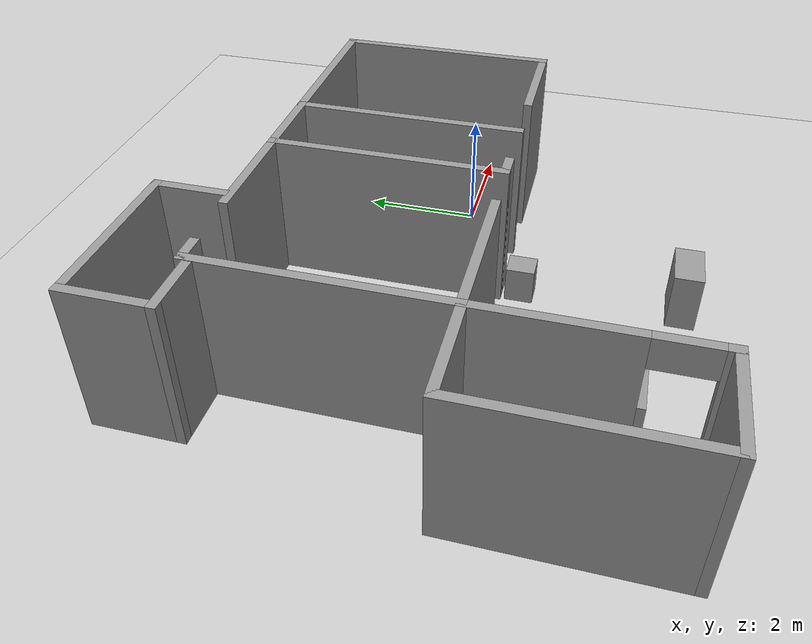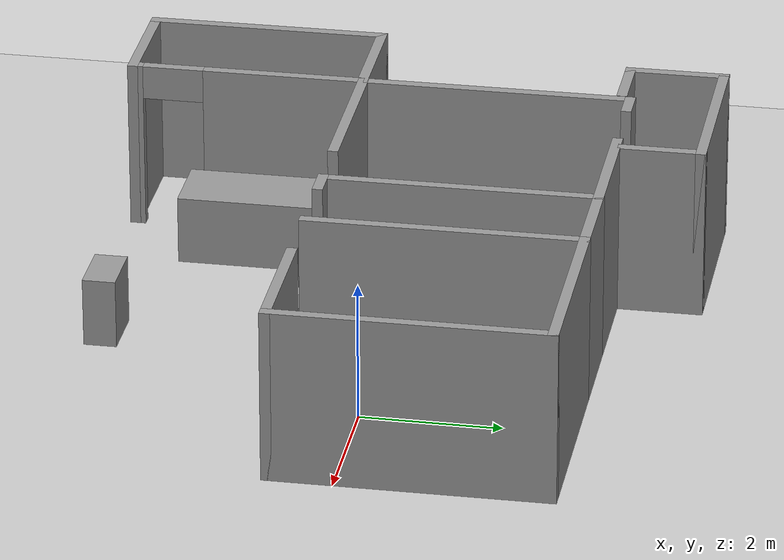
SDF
<sdf version="1.6">
 <world name="default">
  <model name="ground_plane">
   <static>1</static>
   <link name="link">
    <collision name="collision">
     <geometry><plane><normal>0 0 1</normal><size>100 100</size></plane></geometry>
     <surface><friction><ode><mu>100</mu><mu2>50</mu2></ode></friction></surface>
    </collision>
    <visual name="visual">
     <cast_shadows>0</cast_shadows>
     <geometry><plane><normal>0 0 1</normal><size>100 100</size></plane></geometry>
     <material>
      <script><uri>file://media/materials/scripts/gazebo.material</uri><name>Gazebo/Grey</name></script>
     </material>
    </visual>
   </link>
  </model>
  <model name="cma_escritorio">
   <pose>-1.79682 1.02121 0 0 -0 0</pose>
   <link name="Wall_11">
    <collision name="Wall_11_Collision">
     <geometry><box><size>2 0.15 2.5</size></box></geometry>
     <pose>0 0 1.25 0 -0 0</pose>
    </collision>
    <visual name="Wall_11_Visual">
     <pose>0 0 1.25 0 -0 0</pose>
     <geometry><box><size>2 0.15 2.5</size></box></geometry>
     <material>
      <script><uri>file://media/materials/scripts/gazebo.material</uri><name>Gazebo/Grey</name></script>
      <ambient>1 1 1 1</ambient>
     </material>
    </visual>
    <pose>-1.4 1.93 0 0 -0 3.14159</pose>
   </link>
   <link name="Wall_2">
    <collision name="Wall_2_Collision">
     <geometry><box><size>4 0.15 2.5</size></box></geometry>
     <pose>0 0 1.25 0 -0 0</pose>
    </collision>
    <visual name="Wall_2_Visual">
     <pose>0 0 1.25 0 -0 0</pose>
     <geometry><box><size>4 0.15 2.5</size></box></geometry>
     <material>
      <script><uri>file://media/materials/scripts/gazebo.material</uri><name>Gazebo/Grey</name></script>
      <ambient>1 1 1 1</ambient>
     </material>
    </visual>
    <pose>0.875 0.005 0 0 -0 1.5708</pose>
   </link>
   <link name="Wall_25">
    <collision name="Wall_25_Collision">
     <geometry><box><size>2.5 0.15 2.5</size></box></geometry>
     <pose>0 0 1.25 0 -0 0</pose>
    </collision>
    <visual name="Wall_25_Visual">
     <pose>0 0 1.25 0 -0 0</pose>
     <geometry><box><size>2.5 0.15 2.5</size></box></geometry>
     <material>
      <script><uri>file://media/materials/scripts/gazebo.material</uri><name>Gazebo/Grey</name></script>
      <ambient>1 1 1 1</ambient>
     </material>
    </visual>
    <pose>-2.55 -1.93 0 0 -0 3.14159</pose>
   </link>
   <link name="Wall_26">
    <collision name="Wall_26_Collision">
     <geometry><box><size>4 0.15 2.5</size></box></geometry>
     <pose>0 0 1.25 0 -0 0</pose>
    </collision>
    <visual name="Wall_26_Visual">
     <pose>0 0 1.25 0 -0 0</pose>
     <geometry><box><size>4 0.15 2.5</size></box></geometry>
     <material>
      <script><uri>file://media/materials/scripts/gazebo.material</uri><name>Gazebo/Grey</name></script>
      <ambient>1 1 1 1</ambient>
     </material>
    </visual>
    <pose>-3.725 -0.005 0 0 -0 1.5708</pose>
   </link>
   <link name="Wall_27">
    <collision name="Wall_27_Collision">
     <geometry><box><size>0.5 0.15 2.5</size></box></geometry>
     <pose>0 0 1.25 0 -0 0</pose>
    </collision>
    <visual name="Wall_27_Visual">
     <pose>0 0 1.25 0 -0 0</pose>
     <geometry><box><size>0.5 0.15 2.5</size></box></geometry>
     <material>
      <script><uri>file://media/materials/scripts/gazebo.material</uri><name>Gazebo/Grey</name></script>
      <ambient>1 1 1 1</ambient>
     </material>
    </visual>
    <pose>-3.55 1.92 0 0 -0 0</pose>
   </link>
   <link name="Wall_3">
    <collision name="Wall_3_Collision">
     <geometry><box><size>3 0.15 2.5</size></box></geometry>
     <pose>0 0 1.25 0 -0 0</pose>
    </collision>
    <visual name="Wall_3_Visual">
     <pose>0 0 1.25 0 -0 0</pose>
     <geometry><box><size>3 0.15 2.5</size></box></geometry>
     <material>
      <script><uri>file://media/materials/scripts/gazebo.material</uri><name>Gazebo/Grey</name></script>
      <ambient>1 1 1 1</ambient>
     </material>
    </visual>
    <pose>2.3 1.93 0 0 -0 0</pose>
   </link>
   <link name="Wall_4">
    <collision name="Wall_4_Collision">
     <geometry><box><size>4 0.15 2.5</size></box></geometry>
     <pose>0 0 1.25 0 -0 0</pose>
    </collision>
    <visual name="Wall_4_Visual">
     <pose>0 0 1.25 0 -0 0</pose>
     <geometry><box><size>4 0.15 2.5</size></box></geometry>
     <material>
      <script><uri>file://media/materials/scripts/gazebo.material</uri><name>Gazebo/Grey</name></script>
      <ambient>1 1 1 1</ambient>
     </material>
    </visual>
    <pose>3.725 0.005 0 0 0 -1.5708</pose>
   </link>
   <link name="Wall_5">
    <collision name="Wall_5_Collision">
     <geometry><box><size>2 0.15 2.5</size></box></geometry>
     <pose>0 0 1.25 0 -0 0</pose>
    </collision>
    <visual name="Wall_5_Visual">
     <pose>0 0 1.25 0 -0 0</pose>
     <geometry><box><size>2 0.15 2.5</size></box></geometry>
     <material>
      <script><uri>file://media/materials/scripts/gazebo.material</uri><name>Gazebo/Grey</name></script>
      <ambient>1 1 1 1</ambient>
     </material>
    </visual>
    <pose>2.8 -1.92 0 0 -0 3.14159</pose>
   </link>
   <link name="Wall_7">
    <collision name="Wall_7_Collision">
     <geometry><box><size>1.5 0.15 2.5</size></box></geometry>
     <pose>0 0 1.25 0 -0 0</pose>
    </collision>
    <visual name="Wall_7_Visual">
     <pose>0 0 1.25 0 -0 0</pose>
     <geometry><box><size>1.5 0.15 2.5</size></box></geometry>
     <material>
      <script><uri>file://media/materials/scripts/gazebo.material</uri><name>Gazebo/Grey</name></script>
      <ambient>1 1 1 1</ambient>
     </material>
    </visual>
    <pose>0.2 1.93 0 0 -0 3.14159</pose>
   </link>
   <link name="Wall_8">
    <collision name="Wall_8_Collision">
     <geometry><box><size>4 0.15 2.5</size></box></geometry>
     <pose>0 0 1.25 0 -0 0</pose>
    </collision>
    <visual name="Wall_8_Visual">
     <pose>0 0 1.25 0 -0 0</pose>
     <geometry><box><size>4 0.15 2.5</size></box></geometry>
     <material>
      <script><uri>file://media/materials/scripts/gazebo.material</uri><name>Gazebo/Grey</name></script>
      <ambient>1 1 1 1</ambient>
     </material>
    </visual>
    <pose>-0.475 0.005 0 0 0 -1.5708</pose>
   </link>
   <link name="Wall_9">
    <collision name="Wall_9_Collision">
     <geometry><box><size>0.5 0.15 2.5</size></box></geometry>
     <pose>0 0 1.25 0 -0 0</pose>
    </collision>
    <visual name="Wall_9_Visual">
     <pose>0 0 1.25 0 -0 0</pose>
     <geometry><box><size>0.5 0.15 2.5</size></box></geometry>
     <material>
      <script><uri>file://media/materials/scripts/gazebo.material</uri><name>Gazebo/Grey</name></script>
      <ambient>1 1 1 1</ambient>
     </material>
    </visual>
    <pose>-0.3 -1.92 0 0 -0 0</pose>
   </link>
   <static>1</static>
  </model>
  <model name="cma_banheiro">
   <pose>-5.22928 3.4871 0 0 -0 0</pose>
   <link name="Wall_0">
    <collision name="Wall_0_Collision">
     <geometry><box><size>1 0.15 2.5</size></box></geometry>
     <pose>0 0 1.25 0 -0 0</pose>
    </collision>
    <visual name="Wall_0_Visual">
     <pose>0 0 1.25 0 -0 0</pose>
     <geometry><box><size>1 0.15 2.5</size></box></geometry>
     <material>
      <script><uri>file://media/materials/scripts/gazebo.material</uri><name>Gazebo/Grey</name></script>
      <ambient>1 1 1 1</ambient>
     </material>
    </visual>
    <pose>-0.875 -0.675 0 0 -0 3.14159</pose>
   </link>
   <link name="Wall_1">
    <collision name="Wall_1_Collision">
     <geometry><box><size>1.5 0.15 2.5</size></box></geometry>
     <pose>0 0 1.25 0 -0 0</pose>
    </collision>
    <visual name="Wall_1_Visual">
     <pose>0 0 1.25 0 -0 0</pose>
     <geometry><box><size>1.5 0.15 2.5</size></box></geometry>
     <material>
      <script><uri>file://media/materials/scripts/gazebo.material</uri><name>Gazebo/Grey</name></script>
      <ambient>1 1 1 1</ambient>
     </material>
    </visual>
    <pose>-1.3 0 0 0 -0 1.5708</pose>
   </link>
   <link name="Wall_2">
    <collision name="Wall_2_Collision">
     <geometry><box><size>2.75 0.15 2.5</size></box></geometry>
     <pose>0 0 1.25 0 -0 0</pose>
    </collision>
    <visual name="Wall_2_Visual">
     <pose>0 0 1.25 0 -0 0</pose>
     <geometry><box><size>2.75 0.15 2.5</size></box></geometry>
     <material>
      <script><uri>file://media/materials/scripts/gazebo.material</uri><name>Gazebo/Grey</name></script>
      <ambient>1 1 1 1</ambient>
     </material>
    </visual>
    <pose>0 0.675 0 0 -0 0</pose>
   </link>
   <link name="Wall_4">
    <collision name="Wall_4_Collision">
     <geometry><box><size>1.25 0.15 2.5</size></box></geometry>
     <pose>0 0 1.25 0 -0 0</pose>
    </collision>
    <visual name="Wall_4_Visual">
     <pose>0 0 1.25 0 -0 0</pose>
     <geometry><box><size>1.25 0.15 2.5</size></box></geometry>
     <material>
      <script><uri>file://media/materials/scripts/gazebo.material</uri><name>Gazebo/Grey</name></script>
      <ambient>1 1 1 1</ambient>
     </material>
    </visual>
    <pose>1.3 0.125 0 0 0 -1.5708</pose>
   </link>
   <static>1</static>
  </model>
  <model name="cma_varanda1">
   <pose>-6.32518 -2.59313 0 0 -0 0</pose>
   <link name="Wall_0">
    <pose>0.8 0 0 0 0 -1.5708</pose>
    <visual name="Wall_0_Visual_0">
     <pose>-0.5525 0 1.25 0 -0 0</pose>
     <geometry><box><size>2.395 0.15 2.5</size></box></geometry>
     <material>
      <script><uri>file://media/materials/scripts/gazebo.material</uri><name>Gazebo/Grey</name></script>
      <ambient>1 1 1 1</ambient>
     </material>
    </visual>
    <collision name="Wall_0_Collision_0">
     <geometry><box><size>2.395 0.15 2.5</size></box></geometry>
     <pose>-0.5525 0 1.25 0 -0 0</pose>
    </collision>
    <visual name="Wall_0_Visual_1">
     <pose>1.6375 0 1.25 0 -0 0</pose>
     <geometry><box><size>0.225 0.15 2.5</size></box></geometry>
     <material>
      <script><uri>file://media/materials/scripts/gazebo.material</uri><name>Gazebo/Grey</name></script>
      <ambient>1 1 1 1</ambient>
     </material>
    </visual>
    <collision name="Wall_0_Collision_1">
     <geometry><box><size>0.225 0.15 2.5</size></box></geometry>
     <pose>1.6375 0 1.25 0 -0 0</pose>
    </collision>
    <visual name="Wall_0_Visual_2">
     <pose>1.085 0 2.25 0 -0 0</pose>
     <geometry><box><size>0.88 0.15 0.5</size></box></geometry>
     <material>
      <script><uri>file://media/materials/scripts/gazebo.material</uri><name>Gazebo/Grey</name></script>
      <ambient>1 1 1 1</ambient>
     </material>
    </visual>
    <collision name="Wall_0_Collision_2">
     <geometry><box><size>0.88 0.15 0.5</size></box></geometry>
     <pose>1.085 0 2.25 0 -0 0</pose>
    </collision>
   </link>
   <link name="Wall_1">
    <collision name="Wall_1_Collision">
     <geometry><box><size>1.75 0.15 2.5</size></box></geometry>
     <pose>0 0 1.25 0 -0 0</pose>
    </collision>
    <visual name="Wall_1_Visual">
     <pose>0 0 1.25 0 -0 0</pose>
     <geometry><box><size>1.75 0.15 2.5</size></box></geometry>
     <material>
      <script><uri>file://media/materials/scripts/gazebo.material</uri><name>Gazebo/Grey</name></script>
      <ambient>1 1 1 1</ambient>
     </material>
    </visual>
    <pose>0 -1.675 0 0 -0 3.14159</pose>
   </link>
   <link name="Wall_2">
    <collision name="Wall_2_Collision">
     <geometry><box><size>3.5 0.15 2.5</size></box></geometry>
     <pose>0 0 1.25 0 -0 0</pose>
    </collision>
    <visual name="Wall_2_Visual">
     <pose>0 0 1.25 0 -0 0</pose>
     <geometry><box><size>3.5 0.15 2.5</size></box></geometry>
     <material>
      <script><uri>file://media/materials/scripts/gazebo.material</uri><name>Gazebo/Grey</name></script>
      <ambient>1 1 1 1</ambient>
     </material>
    </visual>
    <pose>-0.8 0 0 0 -0 1.5708</pose>
   </link>
   <link name="Wall_3">
    <collision name="Wall_3_Collision">
     <geometry><box><size>1.75 0.15 2.5</size></box></geometry>
     <pose>0 0 1.25 0 -0 0</pose>
    </collision>
    <visual name="Wall_3_Visual">
     <pose>0 0 1.25 0 -0 0</pose>
     <geometry><box><size>1.75 0.15 2.5</size></box></geometry>
     <material>
      <script><uri>file://media/materials/scripts/gazebo.material</uri><name>Gazebo/Grey</name></script>
      <ambient>1 1 1 1</ambient>
     </material>
    </visual>
    <pose>0 1.675 0 0 -0 0</pose>
   </link>
   <static>1</static>
  </model>
  <model name="cma_armario">
   <link name="link_0">
    <pose>1.32157 0.885178 0.5 0 -0 0</pose>
    <inertial>
     <mass>0.402376</mass>
     <inertia>
      <ixx>0.0353686</ixx>
      <ixy>0</ixy>
      <ixz>0</ixz>
      <iyy>0.132616</iyy>
      <iyz>0</iyz>
      <izz>0.100922</izz>
     </inertia>
    </inertial>
    <visual name="visual">
     <geometry><box><size>1.71877 0.234069 1</size></box></geometry>
     <material>
      <lighting>1</lighting>
      <script><uri>file://media/materials/scripts/gazebo.material</uri><name>Gazebo/Grey</name></script>
      <ambient>0.3 0.3 0.3 1</ambient>
      <diffuse>0.7 0.7 0.7 1</diffuse>
      <specular>0.01 0.01 0.01 1</specular>
      <emissive>0 0 0 1</emissive>
     </material>
    </visual>
    <collision name="collision">
     <geometry><box><size>1.71877 0.234069 1</size></box></geometry>
     <surface>
      <friction>
       <ode><mu>1</mu><mu2>1</mu2><fdir1>0 0 0</fdir1><slip1>0</slip1><slip2>0</slip2></ode>
       <torsional>
        <coefficient>1</coefficient>
        <patch_radius>0</patch_radius>
        <surface_radius>0</surface_radius>
        <use_patch_radius>1</use_patch_radius>
        <ode><slip>0</slip></ode>
       </torsional>
      </friction>
      <bounce><restitution_coefficient>0</restitution_coefficient><threshold>1e+06</threshold></bounce>
      <contact>
       <collide_without_contact>0</collide_without_contact>
       <collide_without_contact_bitmask>1</collide_without_contact_bitmask>
       <collide_bitmask>1</collide_bitmask>
       <ode>
        <soft_cfm>0</soft_cfm>
        <soft_erp>0.2</soft_erp>
        <kp>1e+13</kp>
        <kd>1</kd>
        <max_vel>0.01</max_vel>
        <min_depth>0</min_depth>
       </ode>
       <bullet>
        <split_impulse>1</split_impulse>
        <split_impulse_penetration_threshold>-0.01</split_impulse_penetration_threshold>
        <soft_cfm>0</soft_cfm>
        <soft_erp>0.2</soft_erp>
        <kp>1e+13</kp>
        <kd>1</kd>
       </bullet>
      </contact>
     </surface>
    </collision>
   </link>
   <static>0</static>
   <pose>-0.614128 -1.59222 -1e-06 2e-06 -0 0.000793</pose>
  </model>
  <model name="cma_lixo">
   <link name="link_1">
    <pose>0.882962 1.81586 0.5 0 -0 0</pose>
    <inertial>
     <mass>0.0687644</mass>
     <inertia>
      <ixx>0.00602588</ixx>
      <ixy>0</ixy>
      <ixz>0</ixz>
      <iyy>0.00602588</iyy>
      <iyz>0</iyz>
      <izz>0.000591068</izz>
     </inertia>
    </inertial>
    <visual name="visual">
     <geometry><cylinder><radius>0.131112</radius><length>1</length></cylinder></geometry>
     <material>
      <lighting>1</lighting>
      <script><uri>file://media/materials/scripts/gazebo.material</uri><name>Gazebo/Grey</name></script>
      <ambient>0.3 0.3 0.3 1</ambient>
      <diffuse>0.7 0.7 0.7 1</diffuse>
      <specular>0.01 0.01 0.01 1</specular>
      <emissive>0 0 0 1</emissive>
     </material>
    </visual>
    <collision name="collision">
     <geometry><cylinder><radius>0.131112</radius><length>1</length></cylinder></geometry>
     <surface>
      <friction>
       <ode><mu>1</mu><mu2>1</mu2><fdir1>0 0 0</fdir1><slip1>0</slip1><slip2>0</slip2></ode>
       <torsional>
        <coefficient>1</coefficient>
        <patch_radius>0</patch_radius>
        <surface_radius>0</surface_radius>
        <use_patch_radius>1</use_patch_radius>
        <ode><slip>0</slip></ode>
       </torsional>
      </friction>
      <bounce><restitution_coefficient>0</restitution_coefficient><threshold>1e+06</threshold></bounce>
      <contact>
       <collide_without_contact>0</collide_without_contact>
       <collide_without_contact_bitmask>1</collide_without_contact_bitmask>
       <collide_bitmask>1</collide_bitmask>
       <ode>
        <soft_cfm>0</soft_cfm>
        <soft_erp>0.2</soft_erp>
        <kp>1e+13</kp>
        <kd>1</kd>
        <max_vel>0.01</max_vel>
        <min_depth>0</min_depth>
       </ode>
       <bullet>
        <split_impulse>1</split_impulse>
        <split_impulse_penetration_threshold>-0.01</split_impulse_penetration_threshold>
        <soft_cfm>0</soft_cfm>
        <soft_erp>0.2</soft_erp>
        <kp>1e+13</kp>
        <kd>1</kd>
       </bullet>
      </contact>
     </surface>
    </collision>
   </link>
   <static>0</static>
   <pose>-0.62784 -2.26699 -9e-06 0 -0 0.010422</pose>
  </model>
  <model name="cma_gaveteiro_pequeno">
   <link name="link_0">
    <pose>0.256174 1.25055 0.5 0 -0 0</pose>
    <inertial>
     <mass>0.187186</mass>
     <inertia>
      <ixx>0.01851</ixx>
      <ixy>0</ixy>
      <ixz>0</ixz>
      <iyy>0.0185276</iyy>
      <iyz>0</iyz>
      <izz>0.00583981</izz>
     </inertia>
    </inertial>
    <visual name="visual">
     <geometry><box><size>0.433317 0.432002 1</size></box></geometry>
     <material>
      <lighting>1</lighting>
      <script><uri>file://media/materials/scripts/gazebo.material</uri><name>Gazebo/Grey</name></script>
      <ambient>0.3 0.3 0.3 1</ambient>
      <diffuse>0.7 0.7 0.7 1</diffuse>
      <specular>0.01 0.01 0.01 1</specular>
      <emissive>0 0 0 1</emissive>
     </material>
    </visual>
    <collision name="collision">
     <geometry><box><size>0.433317 0.432002 1</size></box></geometry>
     <surface>
      <friction>
       <ode><mu>1</mu><mu2>1</mu2><fdir1>0 0 0</fdir1><slip1>0</slip1><slip2>0</slip2></ode>
       <torsional>
        <coefficient>1</coefficient>
        <patch_radius>0</patch_radius>
        <surface_radius>0</surface_radius>
        <use_patch_radius>1</use_patch_radius>
        <ode><slip>0</slip></ode>
       </torsional>
      </friction>
      <bounce><restitution_coefficient>0</restitution_coefficient><threshold>1e+06</threshold></bounce>
      <contact>
       <collide_without_contact>0</collide_without_contact>
       <collide_without_contact_bitmask>1</collide_without_contact_bitmask>
       <collide_bitmask>1</collide_bitmask>
       <ode>
        <soft_cfm>0</soft_cfm>
        <soft_erp>0.2</soft_erp>
        <kp>1e+13</kp>
        <kd>1</kd>
        <max_vel>0.01</max_vel>
        <min_depth>0</min_depth>
       </ode>
       <bullet>
        <split_impulse>1</split_impulse>
        <split_impulse_penetration_threshold>-0.01</split_impulse_penetration_threshold>
        <soft_cfm>0</soft_cfm>
        <soft_erp>0.2</soft_erp>
        <kp>1e+13</kp>
        <kd>1</kd>
       </bullet>
      </contact>
     </surface>
    </collision>
   </link>
   <static>0</static>
   <pose>-0.853061 1.39432 -7e-06 4e-06 -2e-06 9e-06</pose>
  </model>
  <model name="cma_gaveteiro_pequeno_0">
   <link name="link_0">
    <pose>0.256174 1.25055 0.5 0 -0 0</pose>
    <inertial>
     <mass>0.187186</mass>
     <inertia>
      <ixx>0.01851</ixx>
      <ixy>0</ixy>
      <ixz>0</ixz>
      <iyy>0.0185276</iyy>
      <iyz>0</iyz>
      <izz>0.00583981</izz>
     </inertia>
    </inertial>
    <visual name="visual">
     <geometry><box><size>0.433317 0.432002 1</size></box></geometry>
     <material>
      <lighting>1</lighting>
      <script><uri>file://media/materials/scripts/gazebo.material</uri><name>Gazebo/Grey</name></script>
      <ambient>0.3 0.3 0.3 1</ambient>
      <diffuse>0.7 0.7 0.7 1</diffuse>
      <specular>0.01 0.01 0.01 1</specular>
      <emissive>0 0 0 1</emissive>
     </material>
    </visual>
    <collision name="collision">
     <geometry><box><size>0.433317 0.432002 1</size></box></geometry>
     <surface>
      <friction>
       <ode><mu>1</mu><mu2>1</mu2><fdir1>0 0 0</fdir1><slip1>0</slip1><slip2>0</slip2></ode>
       <torsional>
        <coefficient>1</coefficient>
        <patch_radius>0</patch_radius>
        <surface_radius>0</surface_radius>
        <use_patch_radius>1</use_patch_radius>
        <ode><slip>0</slip></ode>
       </torsional>
      </friction>
      <bounce><restitution_coefficient>0</restitution_coefficient><threshold>1e+06</threshold></bounce>
      <contact>
       <collide_without_contact>0</collide_without_contact>
       <collide_without_contact_bitmask>1</collide_without_contact_bitmask>
       <collide_bitmask>1</collide_bitmask>
       <ode>
        <soft_cfm>0</soft_cfm>
        <soft_erp>0.2</soft_erp>
        <kp>1e+13</kp>
        <kd>1</kd>
        <max_vel>0.01</max_vel>
        <min_depth>0</min_depth>
       </ode>
       <bullet>
        <split_impulse>1</split_impulse>
        <split_impulse_penetration_threshold>-0.01</split_impulse_penetration_threshold>
        <soft_cfm>0</soft_cfm>
        <soft_erp>0.2</soft_erp>
        <kp>1e+13</kp>
        <kd>1</kd>
       </bullet>
      </contact>
     </surface>
    </collision>
   </link>
   <static>0</static>
   <pose>-0.341296 1.3951 5e-06 -5e-06 5e-06 -4.7e-05</pose>
  </model>
  <model name="cma_gaveteiro">
   <link name="link_0">
    <pose>-0 4e-06 0 0 -0 0</pose>
    <inertial>
     <mass>0.245086</mass>
     <inertia>
      <ixx>0.025418</ixx>
      <ixy>0</ixy>
      <ixz>0</ixz>
      <iyy>0.0254411</iyy>
      <iyz>0</iyz>
      <izz>0.0100113</izz>
     </inertia>
    </inertial>
    <visual name="visual">
     <geometry><box><size>0.495657 0.494491 1</size></box></geometry>
     <material>
      <lighting>1</lighting>
      <script><uri>file://media/materials/scripts/gazebo.material</uri><name>Gazebo/Grey</name></script>
      <ambient>0.3 0.3 0.3 1</ambient>
      <diffuse>0.7 0.7 0.7 1</diffuse>
      <specular>0.01 0.01 0.01 1</specular>
      <emissive>0 0 0 1</emissive>
     </material>
    </visual>
    <collision name="collision">
     <geometry><box><size>0.495657 0.494491 1</size></box></geometry>
     <surface>
      <friction>
       <ode><mu>1</mu><mu2>1</mu2><fdir1>0 0 0</fdir1><slip1>0</slip1><slip2>0</slip2></ode>
       <torsional>
        <coefficient>1</coefficient>
        <patch_radius>0</patch_radius>
        <surface_radius>0</surface_radius>
        <use_patch_radius>1</use_patch_radius>
        <ode><slip>0</slip></ode>
       </torsional>
      </friction>
      <bounce><restitution_coefficient>0</restitution_coefficient><threshold>1e+06</threshold></bounce>
      <contact>
       <collide_without_contact>0</collide_without_contact>
       <collide_without_contact_bitmask>1</collide_without_contact_bitmask>
       <collide_bitmask>1</collide_bitmask>
       <ode>
        <soft_cfm>0</soft_cfm>
        <soft_erp>0.2</soft_erp>
        <kp>1e+13</kp>
        <kd>1</kd>
        <max_vel>0.01</max_vel>
        <min_depth>0</min_depth>
       </ode>
       <bullet>
        <split_impulse>1</split_impulse>
        <split_impulse_penetration_threshold>-0.01</split_impulse_penetration_threshold>
        <soft_cfm>0</soft_cfm>
        <soft_erp>0.2</soft_erp>
        <kp>1e+13</kp>
        <kd>1</kd>
       </bullet>
      </contact>
     </surface>
    </collision>
   </link>
   <static>0</static>
   <pose>-0.569077 2.1223 0.5 -1e-06 -2e-06 0.000284</pose>
  </model>
  <model name="cma_gaveteiro_0">
   <link name="link_0">
    <pose>-0 4e-06 0 0 -0 0</pose>
    <inertial>
     <mass>0.245086</mass>
     <inertia>
      <ixx>0.025418</ixx>
      <ixy>0</ixy>
      <ixz>0</ixz>
      <iyy>0.0254411</iyy>
      <iyz>0</iyz>
      <izz>0.0100113</izz>
     </inertia>
    </inertial>
    <visual name="visual">
     <geometry><box><size>0.495657 0.494491 1</size></box></geometry>
     <material>
      <lighting>1</lighting>
      <script><uri>file://media/materials/scripts/gazebo.material</uri><name>Gazebo/Grey</name></script>
      <ambient>0.3 0.3 0.3 1</ambient>
      <diffuse>0.7 0.7 0.7 1</diffuse>
      <specular>0.01 0.01 0.01 1</specular>
      <emissive>0 0 0 1</emissive>
     </material>
    </visual>
    <collision name="collision">
     <geometry><box><size>0.495657 0.494491 1</size></box></geometry>
     <surface>
      <friction>
       <ode><mu>1</mu><mu2>1</mu2><fdir1>0 0 0</fdir1><slip1>0</slip1><slip2>0</slip2></ode>
       <torsional>
        <coefficient>1</coefficient>
        <patch_radius>0</patch_radius>
        <surface_radius>0</surface_radius>
        <use_patch_radius>1</use_patch_radius>
        <ode><slip>0</slip></ode>
       </torsional>
      </friction>
      <bounce><restitution_coefficient>0</restitution_coefficient><threshold>1e+06</threshold></bounce>
      <contact>
       <collide_without_contact>0</collide_without_contact>
       <collide_without_contact_bitmask>1</collide_without_contact_bitmask>
       <collide_bitmask>1</collide_bitmask>
       <ode>
        <soft_cfm>0</soft_cfm>
        <soft_erp>0.2</soft_erp>
        <kp>1e+13</kp>
        <kd>1</kd>
        <max_vel>0.01</max_vel>
        <min_depth>0</min_depth>
       </ode>
       <bullet>
        <split_impulse>1</split_impulse>
        <split_impulse_penetration_threshold>-0.01</split_impulse_penetration_threshold>
        <soft_cfm>0</soft_cfm>
        <soft_erp>0.2</soft_erp>
        <kp>1e+13</kp>
        <kd>1</kd>
       </bullet>
      </contact>
     </surface>
    </collision>
   </link>
   <static>0</static>
   <pose>-0.560139 0.623595 0.500001 1e-06 1e-06 -0.007811</pose>
  </model>
  <model name="cma_lixo_0">
   <link name="link_1">
    <pose>0.882962 1.81586 0.5 0 -0 0</pose>
    <inertial>
     <mass>0.0687644</mass>
     <inertia>
      <ixx>0.00602588</ixx>
      <ixy>0</ixy>
      <ixz>0</ixz>
      <iyy>0.00602588</iyy>
      <iyz>0</iyz>
      <izz>0.000591068</izz>
     </inertia>
    </inertial>
    <visual name="visual">
     <geometry><cylinder><radius>0.131112</radius><length>1</length></cylinder></geometry>
     <material>
      <lighting>1</lighting>
      <script><uri>file://media/materials/scripts/gazebo.material</uri><name>Gazebo/Grey</name></script>
      <ambient>0.3 0.3 0.3 1</ambient>
      <diffuse>0.7 0.7 0.7 1</diffuse>
      <specular>0.01 0.01 0.01 1</specular>
      <emissive>0 0 0 1</emissive>
     </material>
    </visual>
    <collision name="collision">
     <geometry><cylinder><radius>0.131112</radius><length>1</length></cylinder></geometry>
     <surface>
      <friction>
       <ode><mu>1</mu><mu2>1</mu2><fdir1>0 0 0</fdir1><slip1>0</slip1><slip2>0</slip2></ode>
       <torsional>
        <coefficient>1</coefficient>
        <patch_radius>0</patch_radius>
        <surface_radius>0</surface_radius>
        <use_patch_radius>1</use_patch_radius>
        <ode><slip>0</slip></ode>
       </torsional>
      </friction>
      <bounce><restitution_coefficient>0</restitution_coefficient><threshold>1e+06</threshold></bounce>
      <contact>
       <collide_without_contact>0</collide_without_contact>
       <collide_without_contact_bitmask>1</collide_without_contact_bitmask>
       <collide_bitmask>1</collide_bitmask>
       <ode>
        <soft_cfm>0</soft_cfm>
        <soft_erp>0.2</soft_erp>
        <kp>1e+13</kp>
        <kd>1</kd>
        <max_vel>0.01</max_vel>
        <min_depth>0</min_depth>
       </ode>
       <bullet>
        <split_impulse>1</split_impulse>
        <split_impulse_penetration_threshold>-0.01</split_impulse_penetration_threshold>
        <soft_cfm>0</soft_cfm>
        <soft_erp>0.2</soft_erp>
        <kp>1e+13</kp>
        <kd>1</kd>
       </bullet>
      </contact>
     </surface>
    </collision>
   </link>
   <static>0</static>
   <pose>-1.59052 -0.796852 -7e-06 0 -0 0.000705</pose>
  </model>
  <model name="unit_box_0">
   <pose>-0.697515 0.193796 0.5 0 -0 4e-06</pose>
   <link name="link">
    <inertial>
     <mass>1</mass>
     <inertia>
      <ixx>0.166667</ixx>
      <ixy>0</ixy>
      <ixz>0</ixz>
      <iyy>0.166667</iyy>
      <iyz>0</iyz>
      <izz>0.166667</izz>
     </inertia>
    </inertial>
    <collision name="collision"><geometry><box><size>1 1 1</size></box></geometry></collision>
    <visual name="visual">
     <geometry><box><size>1 1 1</size></box></geometry>
     <material>
      <script><name>Gazebo/Grey</name><uri>file://media/materials/scripts/gazebo.material</uri></script>
     </material>
    </visual>
   </link>
  </model>
  <model name="cma_sofa2">
   <link name="link_0">
    <pose>-4.668 -2.00601 0.5 0 -0 0</pose>
    <inertial>
     <mass>1.98683</mass>
     <inertia>
      <ixx>0.819149</ixx>
      <ixy>0</ixy>
      <ixz>0</ixz>
      <iyy>0.331138</iyy>
      <iyz>0</iyz>
      <izz>0.819149</izz>
     </inertia>
    </inertial>
    <visual name="visual">
     <geometry><box><size>1 1.98682 1</size></box></geometry>
     <material>
      <lighting>1</lighting>
      <script><uri>file://media/materials/scripts/gazebo.material</uri><name>Gazebo/Grey</name></script>
      <ambient>0.3 0.3 0.3 1</ambient>
      <diffuse>0.7 0.7 0.7 1</diffuse>
      <specular>0.01 0.01 0.01 1</specular>
      <emissive>0 0 0 1</emissive>
     </material>
    </visual>
    <collision name="collision">
     <geometry><box><size>1 1.98682 1</size></box></geometry>
     <surface>
      <friction>
       <ode><mu>1</mu><mu2>1</mu2><fdir1>0 0 0</fdir1><slip1>0</slip1><slip2>0</slip2></ode>
       <torsional>
        <coefficient>1</coefficient>
        <patch_radius>0</patch_radius>
        <surface_radius>0</surface_radius>
        <use_patch_radius>1</use_patch_radius>
        <ode><slip>0</slip></ode>
       </torsional>
      </friction>
      <bounce><restitution_coefficient>0</restitution_coefficient><threshold>1e+06</threshold></bounce>
      <contact>
       <collide_without_contact>0</collide_without_contact>
       <collide_without_contact_bitmask>1</collide_without_contact_bitmask>
       <collide_bitmask>1</collide_bitmask>
       <ode>
        <soft_cfm>0</soft_cfm>
        <soft_erp>0.2</soft_erp>
        <kp>1e+13</kp>
        <kd>1</kd>
        <max_vel>0.01</max_vel>
        <min_depth>0</min_depth>
       </ode>
       <bullet>
        <split_impulse>1</split_impulse>
        <split_impulse_penetration_threshold>-0.01</split_impulse_penetration_threshold>
        <soft_cfm>0</soft_cfm>
        <soft_erp>0.2</soft_erp>
        <kp>1e+13</kp>
        <kd>1</kd>
       </bullet>
      </contact>
     </surface>
    </collision>
   </link>
   <static>0</static>
   <pose>-0.128912 -0.395468 -5e-06 -3e-06 -1e-06 1e-06</pose>
  </model>
  <model name="cma_bau_s">
   <link name="link_1">
    <pose>0.109594 0.272293 0 0 -0 0</pose>
    <inertial>
     <mass>0.125479</mass>
     <inertia>
      <ixx>0.00641943</ixx>
      <ixy>0</ixy>
      <ixz>0</ixz>
      <iyy>0.0059754</iyy>
      <iyz>0</iyz>
      <izz>0.00422085</izz>
     </inertia>
    </inertial>
    <visual name="visual">
     <geometry><box><size>0.424964 0.472283 0.625118</size></box></geometry>
     <material>
      <lighting>1</lighting>
      <script><uri>file://media/materials/scripts/gazebo.material</uri><name>Gazebo/Grey</name></script>
      <ambient>0.3 0.3 0.3 1</ambient>
      <diffuse>0.7 0.7 0.7 1</diffuse>
      <specular>0.01 0.01 0.01 1</specular>
      <emissive>0 0 0 1</emissive>
     </material>
    </visual>
    <collision name="collision">
     <geometry><box><size>0.424964 0.472283 0.625118</size></box></geometry>
     <surface>
      <friction>
       <ode><mu>1</mu><mu2>1</mu2><fdir1>0 0 0</fdir1><slip1>0</slip1><slip2>0</slip2></ode>
       <torsional>
        <coefficient>1</coefficient>
        <patch_radius>0</patch_radius>
        <surface_radius>0</surface_radius>
        <use_patch_radius>1</use_patch_radius>
        <ode><slip>0</slip></ode>
       </torsional>
      </friction>
      <bounce><restitution_coefficient>0</restitution_coefficient><threshold>1e+06</threshold></bounce>
      <contact>
       <collide_without_contact>0</collide_without_contact>
       <collide_without_contact_bitmask>1</collide_without_contact_bitmask>
       <collide_bitmask>1</collide_bitmask>
       <ode>
        <soft_cfm>0</soft_cfm>
        <soft_erp>0.2</soft_erp>
        <kp>1e+13</kp>
        <kd>1</kd>
        <max_vel>0.01</max_vel>
        <min_depth>0</min_depth>
       </ode>
       <bullet>
        <split_impulse>1</split_impulse>
        <split_impulse_penetration_threshold>-0.01</split_impulse_penetration_threshold>
        <soft_cfm>0</soft_cfm>
        <soft_erp>0.2</soft_erp>
        <kp>1e+13</kp>
        <kd>1</kd>
       </bullet>
      </contact>
     </surface>
    </collision>
   </link>
   <static>0</static>
   <pose>-2.20978 -1.54063 0.312558 4e-06 1.2e-05 -0</pose>
  </model>
  <model name="cma_armario_s">
   <link name="link_1">
    <pose>-2e-06 -3e-06 0 0 -0 0</pose>
    <inertial>
     <mass>0.390159</mass>
     <inertia>
      <ixx>0.039647</ixx>
      <ixy>0</ixy>
      <ixz>0</ixz>
      <iyy>0.0550708</iyy>
      <iyz>0</iyz>
      <izz>0.0296912</izz>
     </inertia>
    </inertial>
    <visual name="visual">
     <geometry><box><size>0.832942 0.468397 1</size></box></geometry>
     <material>
      <lighting>1</lighting>
      <script><uri>file://media/materials/scripts/gazebo.material</uri><name>Gazebo/Grey</name></script>
      <ambient>0.3 0.3 0.3 1</ambient>
      <diffuse>0.7 0.7 0.7 1</diffuse>
      <specular>0.01 0.01 0.01 1</specular>
      <emissive>0 0 0 1</emissive>
     </material>
    </visual>
    <collision name="collision">
     <geometry><box><size>0.832942 0.468397 1</size></box></geometry>
     <surface>
      <friction>
       <ode><mu>1</mu><mu2>1</mu2><fdir1>0 0 0</fdir1><slip1>0</slip1><slip2>0</slip2></ode>
       <torsional>
        <coefficient>1</coefficient>
        <patch_radius>0</patch_radius>
        <surface_radius>0</surface_radius>
        <use_patch_radius>1</use_patch_radius>
        <ode><slip>0</slip></ode>
       </torsional>
      </friction>
      <bounce><restitution_coefficient>0</restitution_coefficient><threshold>1e+06</threshold></bounce>
      <contact>
       <collide_without_contact>0</collide_without_contact>
       <collide_without_contact_bitmask>1</collide_without_contact_bitmask>
       <collide_bitmask>1</collide_bitmask>
       <ode>
        <soft_cfm>0</soft_cfm>
        <soft_erp>0.2</soft_erp>
        <kp>1e+13</kp>
        <kd>1</kd>
        <max_vel>0.01</max_vel>
        <min_depth>0</min_depth>
       </ode>
       <bullet>
        <split_impulse>1</split_impulse>
        <split_impulse_penetration_threshold>-0.01</split_impulse_penetration_threshold>
        <soft_cfm>0</soft_cfm>
        <soft_erp>0.2</soft_erp>
        <kp>1e+13</kp>
        <kd>1</kd>
       </bullet>
      </contact>
     </surface>
    </collision>
   </link>
   <static>0</static>
   <pose>-1.91896 -3.93452 0.499999 2e-06 4e-06 -1e-06</pose>
  </model>
  <model name="cma_apoio_s">
   <link name="link_1">
    <pose>-1.9376 -3.46551 0.5 0 -0 0</pose>
    <inertial>
     <mass>0.0878463</mass>
     <inertia>
      <ixx>0.00392696</ixx>
      <ixy>0</ixy>
      <ixz>0</ixz>
      <iyy>0.00385356</iyy>
      <iyz>0</iyz>
      <izz>0.0020587</izz>
     </inertia>
    </inertial>
    <visual name="visual">
     <geometry><box><size>0.368223 0.381592 0.625118</size></box></geometry>
     <material>
      <lighting>1</lighting>
      <script><uri>file://media/materials/scripts/gazebo.material</uri><name>Gazebo/Grey</name></script>
      <ambient>0.3 0.3 0.3 1</ambient>
      <diffuse>0.7 0.7 0.7 1</diffuse>
      <specular>0.01 0.01 0.01 1</specular>
      <emissive>0 0 0 1</emissive>
     </material>
    </visual>
    <collision name="collision">
     <geometry><box><size>0.368223 0.381592 0.625118</size></box></geometry>
     <surface>
      <friction>
       <ode><mu>1</mu><mu2>1</mu2><fdir1>0 0 0</fdir1><slip1>0</slip1><slip2>0</slip2></ode>
       <torsional>
        <coefficient>1</coefficient>
        <patch_radius>0</patch_radius>
        <surface_radius>0</surface_radius>
        <use_patch_radius>1</use_patch_radius>
        <ode><slip>0</slip></ode>
       </torsional>
      </friction>
      <bounce><restitution_coefficient>0</restitution_coefficient><threshold>1e+06</threshold></bounce>
      <contact>
       <collide_without_contact>0</collide_without_contact>
       <collide_without_contact_bitmask>1</collide_without_contact_bitmask>
       <collide_bitmask>1</collide_bitmask>
       <ode>
        <soft_cfm>0</soft_cfm>
        <soft_erp>0.2</soft_erp>
        <kp>1e+13</kp>
        <kd>1</kd>
        <max_vel>0.01</max_vel>
        <min_depth>0</min_depth>
       </ode>
       <bullet>
        <split_impulse>1</split_impulse>
        <split_impulse_penetration_threshold>-0.01</split_impulse_penetration_threshold>
        <soft_cfm>0</soft_cfm>
        <soft_erp>0.2</soft_erp>
        <kp>1e+13</kp>
        <kd>1</kd>
       </bullet>
      </contact>
     </surface>
    </collision>
   </link>
   <static>0</static>
   <pose>-2.01012 2.11196 -0.18739 9e-06 -1.2e-05 -0.000303</pose>
  </model>
 </world>
</sdf>
